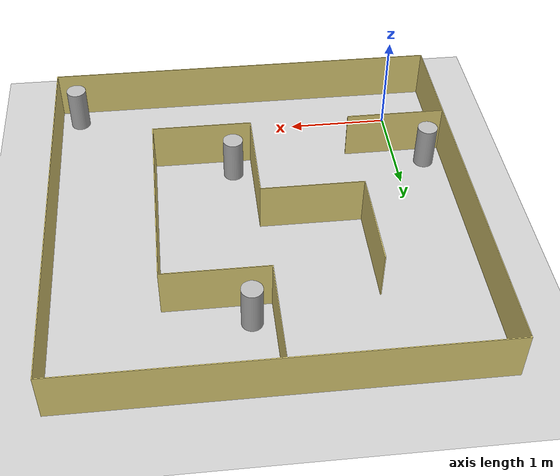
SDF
<sdf version='1.10'>
  <world name='empty'>
    <physics name='1ms' type='ignored'>
      <max_step_size>0.001</max_step_size>
      <real_time_factor>1</real_time_factor>
      <real_time_update_rate>1000</real_time_update_rate>
    </physics>
    <plugin name='gz::sim::systems::Physics' filename='gz-sim-physics-system'/>
    <plugin name='gz::sim::systems::UserCommands' filename='gz-sim-user-commands-system'/>
    <plugin name='gz::sim::systems::SceneBroadcaster' filename='gz-sim-scene-broadcaster-system'/>
    <plugin name='gz::sim::systems::Contact' filename='gz-sim-contact-system'/>
    <gravity>0 0 -9.8000000000000007</gravity>
    <magnetic_field>5.5644999999999998e-06 2.2875799999999999e-05 -4.2388400000000002e-05</magnetic_field>
    <atmosphere type='adiabatic'/>
    <scene>
      <ambient>0.400000006 0.400000006 0.400000006 1</ambient>
      <background>0.699999988 0.699999988 0.699999988 1</background>
      <shadows>true</shadows>
    </scene>
    <plugin name='gz::sim::systems::Sensors' filename='gz-sim-sensors-system'>
      <render_engine>ogre2</render_engine>
    </plugin>
    <model name='ground_plane'>
      <static>true</static>
      <link name='link'>
        <collision name='collision'>
          <geometry>
            <plane>
              <normal>0 0 1</normal>
              <size>100 100</size>
            </plane>
          </geometry>
          <surface>
            <friction>
              <ode/>
            </friction>
            <bounce/>
            <contact/>
          </surface>
        </collision>
        <visual name='visual'>
          <geometry>
            <plane>
              <normal>0 0 1</normal>
              <size>100 100</size>
            </plane>
          </geometry>
          <material>
            <ambient>0.800000012 0.800000012 0.800000012 1</ambient>
            <diffuse>0.800000012 0.800000012 0.800000012 1</diffuse>
            <specular>0.800000012 0.800000012 0.800000012 1</specular>
          </material>
        </visual>
        <pose>0 0 0 0 0 0</pose>
        <inertial>
          <pose>0 0 0 0 0 0</pose>
          <mass>1</mass>
          <inertia>
            <ixx>1</ixx>
            <ixy>0</ixy>
            <ixz>0</ixz>
            <iyy>1</iyy>
            <iyz>0</iyz>
            <izz>1</izz>
          </inertia>
        </inertial>
        <enable_wind>false</enable_wind>
      </link>
      <pose>4 0 0 0 0 0</pose>
      <self_collide>false</self_collide>
    </model>
    <model name='Maze1'>
      <link name='link'>
        <visual name='visual'>
          <geometry>
            <mesh>
              <uri>file://maze_6/Maze6.obj</uri>
            </mesh>
          </geometry>
          <material>
            <diffuse>0.939999998 0.870000005 0.5 1</diffuse>
            <ambient>0.5 0 0 1</ambient>
            <specular>0 0 0 0</specular>
            <emissive>0 0 0 1</emissive>
          </material>
        </visual>
        <collision name='collision'>
          <geometry>
            <mesh>
              <uri>file://maze_6/Maze6.obj</uri>
            </mesh>
          </geometry>
        </collision>
        <pose>0 0 0 0 0 0</pose>
        <inertial>
          <pose>0 0 0 0 0 0</pose>
          <mass>1</mass>
          <inertia>
            <ixx>1</ixx>
            <ixy>0</ixy>
            <ixz>0</ixz>
            <iyy>1</iyy>
            <iyz>0</iyz>
            <izz>1</izz>
          </inertia>
        </inertial>
        <enable_wind>false</enable_wind>
      </link>
      <pose>-0.5 -0.5 0 1.571 5.5511151231257827e-17 -1.571</pose>
      <static>true</static>
      <self_collide>false</self_collide>
    </model>
    <model name='beacon1'>
      <link name='link'>
        <visual name='visual'>
          <geometry>
            <mesh>
              <uri>file://beacons/beacon1.obj</uri>
            </mesh>
          </geometry>
        </visual>
        <collision name='collision'>
          <geometry>
            <mesh>
              <uri>file://beacons/beacon1.obj</uri>
            </mesh>
          </geometry>
        </collision>
        <pose>0 0 0 0 0 0</pose>
        <inertial>
          <pose>0 0 0 0 0 0</pose>
          <mass>1</mass>
          <inertia>
            <ixx>1</ixx>
            <ixy>0</ixy>
            <ixz>0</ixz>
            <iyy>1</iyy>
            <iyz>0</iyz>
            <izz>1</izz>
          </inertia>
        </inertial>
        <enable_wind>false</enable_wind>
      </link>
      <pose>3.2999999999999998 -0.30000000000000004 0.22000000000000003 1.5700000000000001 0 0</pose>
      <static>true</static>
      <self_collide>false</self_collide>
    </model>
    <model name='beacon2'>
      <link name='link'>
        <visual name='visual'>
          <geometry>
            <mesh>
              <uri>file://beacons/beacon2.obj</uri>
            </mesh>
          </geometry>
        </visual>
        <collision name='collision'>
          <geometry>
            <mesh>
              <uri>file://beacons/beacon2.obj</uri>
            </mesh>
          </geometry>
        </collision>
        <pose>0 0 0 0 0 0</pose>
        <inertial>
          <pose>0 0 0 0 0 0</pose>
          <mass>1</mass>
          <inertia>
            <ixx>1</ixx>
            <ixy>0</ixy>
            <ixz>0</ixz>
            <iyy>1</iyy>
            <iyz>0</iyz>
            <izz>1</izz>
          </inertia>
        </inertial>
        <enable_wind>false</enable_wind>
      </link>
      <pose>1.7 2.7000000000000006 0.22000000000000003 1.5700000000000001 0 0</pose>
      <static>true</static>
      <self_collide>false</self_collide>
    </model>
    <model name='beacon3'>
      <link name='link'>
        <visual name='visual'>
          <geometry>
            <mesh>
              <uri>file://beacons/beacon3.obj</uri>
            </mesh>
          </geometry>
        </visual>
        <collision name='collision'>
          <geometry>
            <mesh>
              <uri>file://beacons/beacon3.obj</uri>
            </mesh>
          </geometry>
        </collision>
        <pose>0 0 0 0 0 0</pose>
        <inertial>
          <pose>0 0 0 0 0 0</pose>
          <mass>1</mass>
          <inertia>
            <ixx>1</ixx>
            <ixy>0</ixy>
            <ixz>0</ixz>
            <iyy>1</iyy>
            <iyz>0</iyz>
            <izz>1</izz>
          </inertia>
        </inertial>
        <enable_wind>false</enable_wind>
      </link>
      <pose>-0.29999999999999999 0.70000000000000018 0.22000000000000006 1.5700000000000001 0 0</pose>
      <static>true</static>
      <self_collide>false</self_collide>
    </model>
    <model name='beacon4'>
      <link name='link'>
        <visual name='visual'>
          <geometry>
            <mesh>
              <uri>file://beacons/beacon4.obj</uri>
            </mesh>
          </geometry>
        </visual>
        <collision name='collision'>
          <geometry>
            <mesh>
              <uri>file://beacons/beacon4.obj</uri>
            </mesh>
          </geometry>
        </collision>
        <pose>0 0 0 0 0 0</pose>
        <inertial>
          <pose>0 0 0 0 0 0</pose>
          <mass>1</mass>
          <inertia>
            <ixx>1</ixx>
            <ixy>0</ixy>
            <ixz>0</ixz>
            <iyy>1</iyy>
            <iyz>0</iyz>
            <izz>1</izz>
          </inertia>
        </inertial>
        <enable_wind>false</enable_wind>
      </link>
      <pose>1.7 0.69999999999999996 0.22000000000000003 1.5700000000000001 0 0</pose>
      <static>false</static>
      <self_collide>true</self_collide>
    </model>
    <light name='sun' type='directional'>
      <pose>0 0 10 0 0 0</pose>
      <cast_shadows>true</cast_shadows>
      <intensity>1</intensity>
      <direction>-0.5 0.10000000000000001 -0.90000000000000002</direction>
      <diffuse>0.800000012 0.800000012 0.800000012 1</diffuse>
      <specular>0.200000003 0.200000003 0.200000003 1</specular>
      <attenuation>
        <range>1000</range>
        <linear>0.0099999997764825821</linear>
        <constant>0.89999997615814209</constant>
        <quadratic>0.0010000000474974513</quadratic>
      </attenuation>
      <spot>
        <inner_angle>0</inner_angle>
        <outer_angle>0</outer_angle>
        <falloff>0</falloff>
      </spot>
    </light>
  </world>
</sdf>
